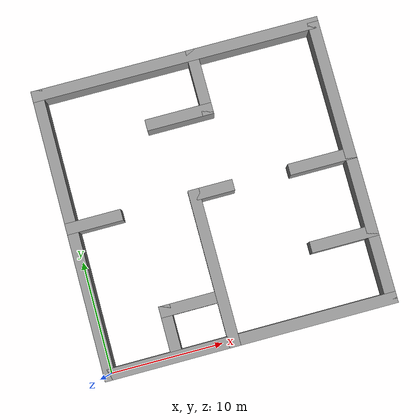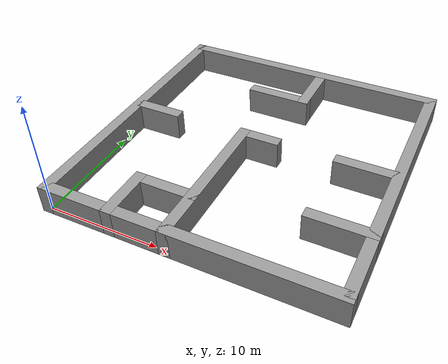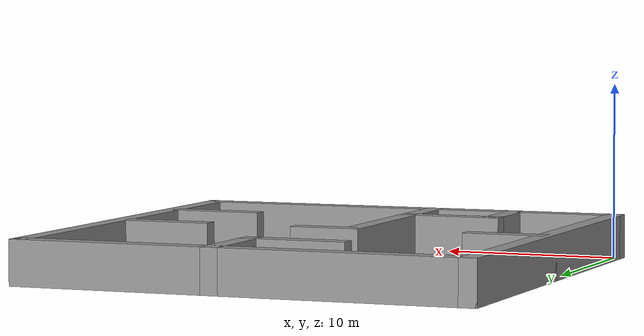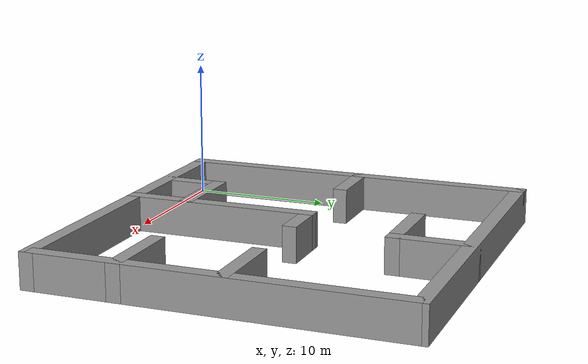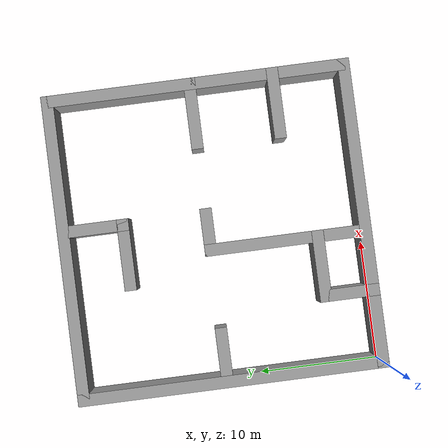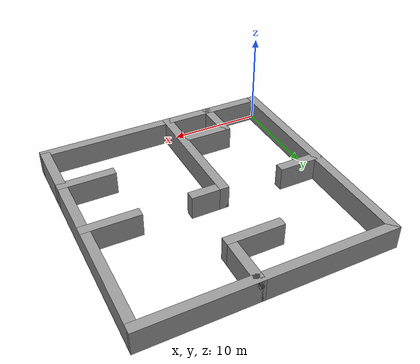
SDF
<?xml version='1.0'?>
<sdf version='1.4'>
  <model name='exampleMaps'>
    <link name='Wall_0'>
      <collision name='Wall_0_Collision'>
        <geometry>
          <box>
            <size>26 1 2.5</size>
          </box>
        </geometry>
        <pose>0 0 1.25 0 -0 0</pose>
      </collision>
      <visual name='Wall_0_Visual'>
        <pose>0 0 1.25 0 -0 0</pose>
        <geometry>
          <box>
            <size>26 1 2.5</size>
          </box>
        </geometry>
        <material>
          <script>
            <uri>file://media/materials/scripts/gazebo.material</uri>
            <name>Gazebo/Grey</name>
          </script>
        </material>
      </visual>
      <velocity_decay>
        <linear>0</linear>
        <angular>0</angular>
      </velocity_decay>
      <pose>0 12.5 0 0 -0 1.5708</pose>
    </link>
    <link name='Wall_1'>
      <collision name='Wall_1_Collision'>
        <geometry>
          <box>
            <size>26 1 2.5</size>
          </box>
        </geometry>
        <pose>0 0 1.25 0 -0 0</pose>
      </collision>
      <visual name='Wall_1_Visual'>
        <pose>0 0 1.25 0 -0 0</pose>
        <geometry>
          <box>
            <size>26 1 2.5</size>
          </box>
        </geometry>
        <material>
          <script>
            <uri>file://media/materials/scripts/gazebo.material</uri>
            <name>Gazebo/Grey</name>
          </script>
        </material>
      </visual>
      <velocity_decay>
        <linear>0</linear>
        <angular>0</angular>
      </velocity_decay>
      <pose>12.5 25 0 0 -0 0</pose>
    </link>
    <link name='Wall_10'>
      <collision name='Wall_10_Collision'>
        <geometry>
          <box>
            <size>6 1 2.5</size>
          </box>
        </geometry>
        <pose>0 0 1.25 0 -0 0</pose>
      </collision>
      <visual name='Wall_10_Visual'>
        <pose>0 0 1.25 0 -0 0</pose>
        <geometry>
          <box>
            <size>6 1 2.5</size>
          </box>
        </geometry>
        <material>
          <script>
            <uri>file://media/materials/scripts/gazebo.material</uri>
            <name>Gazebo/Grey</name>
          </script>
        </material>
      </visual>
      <velocity_decay>
        <linear>0</linear>
        <angular>0</angular>
      </velocity_decay>
      <pose>14 22.5 0 0 0 -1.5708</pose>
    </link>
    <link name='Wall_11'>
      <collision name='Wall_11_Collision'>
        <geometry>
          <box>
            <size>6 1 2.5</size>
          </box>
        </geometry>
        <pose>0 0 1.25 0 -0 0</pose>
      </collision>
      <visual name='Wall_11_Visual'>
        <pose>0 0 1.25 0 -0 0</pose>
        <geometry>
          <box>
            <size>6 1 2.5</size>
          </box>
        </geometry>
        <material>
          <script>
            <uri>file://media/materials/scripts/gazebo.material</uri>
            <name>Gazebo/Grey</name>
          </script>
        </material>
      </visual>
      <velocity_decay>
        <linear>0</linear>
        <angular>0</angular>
      </velocity_decay>
      <pose>11.5 20 0 0 -0 3.14159</pose>
    </link>
    <link name='Wall_16'>
      <collision name='Wall_16_Collision'>
        <geometry>
          <box>
            <size>6 1 2.5</size>
          </box>
        </geometry>
        <pose>0 0 1.25 0 -0 0</pose>
      </collision>
      <visual name='Wall_16_Visual'>
        <pose>0 0 1.25 0 -0 0</pose>
        <geometry>
          <box>
            <size>6 1 2.5</size>
          </box>
        </geometry>
        <material>
          <script>
            <uri>file://media/materials/scripts/gazebo.material</uri>
            <name>Gazebo/Grey</name>
          </script>
        </material>
      </visual>
      <velocity_decay>
        <linear>0</linear>
        <angular>0</angular>
      </velocity_decay>
      <pose>22.5 13 0 0 -0 3.14159</pose>
    </link>
    <link name='Wall_18'>
      <collision name='Wall_18_Collision'>
        <geometry>
          <box>
            <size>6 1 2.5</size>
          </box>
        </geometry>
        <pose>0 0 1.25 0 -0 0</pose>
      </collision>
      <visual name='Wall_18_Visual'>
        <pose>0 0 1.25 0 -0 0</pose>
        <geometry>
          <box>
            <size>6 1 2.5</size>
          </box>
        </geometry>
        <material>
          <script>
            <uri>file://media/materials/scripts/gazebo.material</uri>
            <name>Gazebo/Grey</name>
          </script>
        </material>
      </visual>
      <velocity_decay>
        <linear>0</linear>
        <angular>0</angular>
      </velocity_decay>
      <pose>22.5 6 0 0 -0 3.14159</pose>
    </link>
    <link name='Wall_2'>
      <collision name='Wall_2_Collision'>
        <geometry>
          <box>
            <size>25.2 1 2.5</size>
          </box>
        </geometry>
        <pose>0 0 1.25 0 -0 0</pose>
      </collision>
      <visual name='Wall_2_Visual'>
        <pose>0 0 1.25 0 -0 0</pose>
        <geometry>
          <box>
            <size>25.2 1 2.5</size>
          </box>
        </geometry>
        <material>
          <script>
            <uri>file://media/materials/scripts/gazebo.material</uri>
            <name>Gazebo/Grey</name>
          </script>
        </material>
      </visual>
      <velocity_decay>
        <linear>0</linear>
        <angular>0</angular>
      </velocity_decay>
      <pose>25 12.5 0 0 0 -1.5708</pose>
    </link>
    <link name='Wall_20'>
      <collision name='Wall_20_Collision'>
        <geometry>
          <box>
            <size>14 1 2.5</size>
          </box>
        </geometry>
        <pose>0 0 1.25 0 -0 0</pose>
      </collision>
      <visual name='Wall_20_Visual'>
        <pose>0 0 1.25 0 -0 0</pose>
        <geometry>
          <box>
            <size>14 1 2.5</size>
          </box>
        </geometry>
        <material>
          <script>
            <uri>file://media/materials/scripts/gazebo.material</uri>
            <name>Gazebo/Grey</name>
          </script>
        </material>
      </visual>
      <velocity_decay>
        <linear>0</linear>
        <angular>0</angular>
      </velocity_decay>
      <pose>11 6.5 0 0 -0 1.5708</pose>
    </link>
    <link name='Wall_21'>
      <collision name='Wall_21_Collision'>
        <geometry>
          <box>
            <size>4 1 2.5</size>
          </box>
        </geometry>
        <pose>0 0 1.25 0 -0 0</pose>
      </collision>
      <visual name='Wall_21_Visual'>
        <pose>0 0 1.25 0 -0 0</pose>
        <geometry>
          <box>
            <size>4 1 2.5</size>
          </box>
        </geometry>
        <material>
          <script>
            <uri>file://media/materials/scripts/gazebo.material</uri>
            <name>Gazebo/Grey</name>
          </script>
        </material>
      </visual>
      <velocity_decay>
        <linear>0</linear>
        <angular>0</angular>
      </velocity_decay>
      <pose>12.5 13 0 0 -0 0</pose>
    </link>
    <link name='Wall_23'>
      <collision name='Wall_23_Collision'>
        <geometry>
          <box>
            <size>6 1 2.5</size>
          </box>
        </geometry>
        <pose>0 0 1.25 0 -0 0</pose>
      </collision>
      <visual name='Wall_23_Visual'>
        <pose>0 0 1.25 0 -0 0</pose>
        <geometry>
          <box>
            <size>6 1 2.5</size>
          </box>
        </geometry>
        <material>
          <script>
            <uri>file://media/materials/scripts/gazebo.material</uri>
            <name>Gazebo/Grey</name>
          </script>
        </material>
      </visual>
      <velocity_decay>
        <linear>0</linear>
        <angular>0</angular>
      </velocity_decay>
      <pose>8.5 4 0 0 -0 3.14159</pose>
    </link>
    <link name='Wall_24'>
      <collision name='Wall_24_Collision'>
        <geometry>
          <box>
            <size>5 1 2.5</size>
          </box>
        </geometry>
        <pose>0 0 1.25 0 -0 0</pose>
      </collision>
      <visual name='Wall_24_Visual'>
        <pose>0 0 1.25 0 -0 0</pose>
        <geometry>
          <box>
            <size>5 1 2.5</size>
          </box>
        </geometry>
        <material>
          <script>
            <uri>file://media/materials/scripts/gazebo.material</uri>
            <name>Gazebo/Grey</name>
          </script>
        </material>
      </visual>
      <velocity_decay>
        <linear>0</linear>
        <angular>0</angular>
      </velocity_decay>
      <pose>6 2 0 0 0 -1.5708</pose>
    </link>
    <link name='Wall_3'>
      <collision name='Wall_3_Collision'>
        <geometry>
          <box>
            <size>26 1 2.5</size>
          </box>
        </geometry>
        <pose>0 0 1.25 0 -0 0</pose>
      </collision>
      <visual name='Wall_3_Visual'>
        <pose>0 0 1.25 0 -0 0</pose>
        <geometry>
          <box>
            <size>26 1 2.5</size>
          </box>
        </geometry>
        <material>
          <script>
            <uri>file://media/materials/scripts/gazebo.material</uri>
            <name>Gazebo/Grey</name>
          </script>
        </material>
      </visual>
      <velocity_decay>
        <linear>0</linear>
        <angular>0</angular>
      </velocity_decay>
      <pose>12.5 0 0 0 -0 3.14159</pose>
    </link>
    <link name='Wall_8'>
      <collision name='Wall_8_Collision'>
        <geometry>
          <box>
            <size>5 1 2.5</size>
          </box>
        </geometry>
        <pose>0 0 1.25 0 -0 0</pose>
      </collision>
      <visual name='Wall_8_Visual'>
        <pose>0 0 1.25 0 -0 0</pose>
        <geometry>
          <box>
            <size>5 1 2.5</size>
          </box>
        </geometry>
        <material>
          <script>
            <uri>file://media/materials/scripts/gazebo.material</uri>
            <name>Gazebo/Grey</name>
          </script>
        </material>
      </visual>
      <velocity_decay>
        <linear>0</linear>
        <angular>0</angular>
      </velocity_decay>
      <pose>2 13 0 0 -0 0</pose>
    </link>
    <static>1</static>
  </model>
</sdf>
